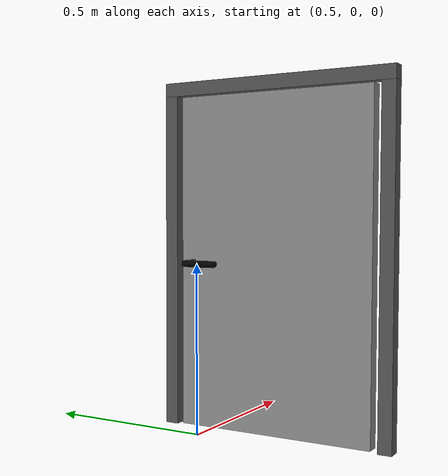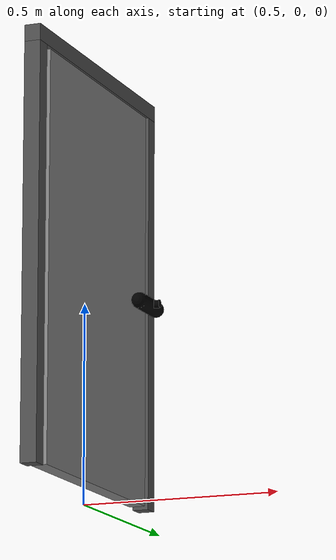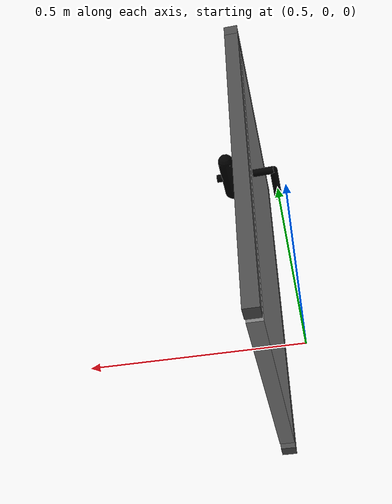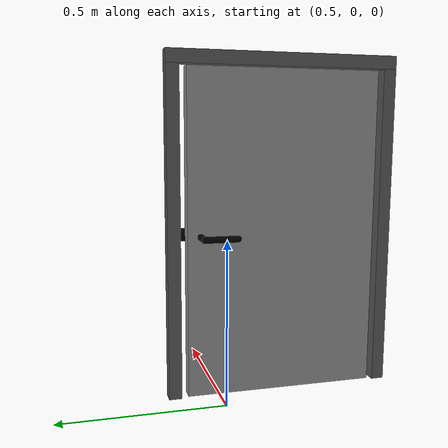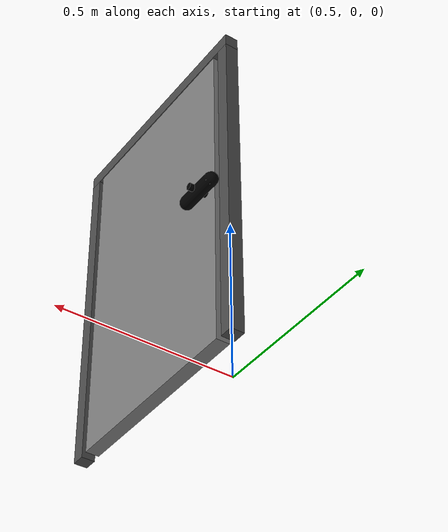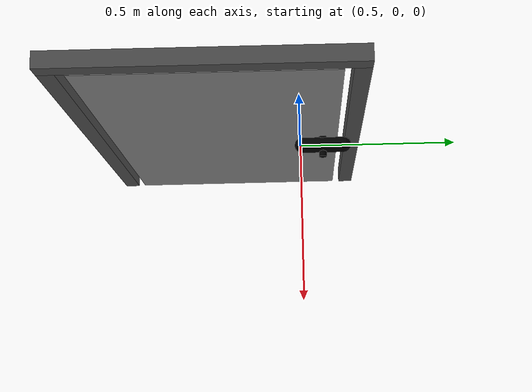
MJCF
<mujoco model='door'>
    <worldbody>

        <!-- Parameter definitions: -->
        <!-- distance_base_to_door = 0.6 [m] -->
        <!-- door_width: 0.6 [m] (half-width 0.3) -->
        <!-- door_thickness: 0.04 [m] (half-thickness 0.02) -->
        <!-- door_height: 1.0 [m] (half-height 0.5) -->
        <!-- door_latch_offset: z=0.0 [m] -->
        <!-- door_latch_radius: 0.01 [m] -->

        <body name="door_frame" pos="0.6 0.1 0.5" quat="0.7071068 0 0 -0.7071068" user="1001 0 2002 -0.4 -0.1 0.252 0 0.3 0.5">

            <!-- Two vertical posts resting on ground -->
            <!-- Left post (shifted half_door_thickness) -->
            <geom type="box" pos="-0.04 0 0" size="0.02 0.02 0.5" rgba="0.3 0.3 0.3 1"/>
            <!-- Right post (shifted door_width + half_door_thickness) -->
            <geom type="box" pos="0.64 0 0" size="0.02 0.02 0.5" rgba="0.3 0.3 0.3 1"/>
            <!-- Upper horizontal beam -->
            <geom type="box" pos="0.3 0 0.52" size="0.36 0.02 0.02" rgba="0.3 0.3 0.3 1"/>
            <site name="S_handle_target" pos="0.75 -0.5 -.18" size="0.02" group='3'/>

            <!-- Door panel -->
            <!-- Located at half_door_width  -->
            <body name="door_panel" pos="0.3 0 0">
                <!-- Uniform density wooden door; CoM at geometric center (0,0,0) and
                     inertia of a 0.6 x 0.04 x 1.0 m box (x,y,z). -->
                <inertial pos="0 0 0"
                          quat="1 0 0 0"
                          mass="10.0"
                          diaginertia="0.4173 0.5667 0.1507" />

                <!-- Box size: half_door_width x half_door_thickness x half_door_height -->
                <!-- Door should be slightly shifted up to avoid collision with ground -->
                <geom type="box" size="0.3 0.02 0.495" friction="0.5 0.1 0.001" />

                <!-- Door hinge joint  -->
                <!-- Located at the side of the door panel -->
                <joint name="door_hinge" pos="0.3 0 0" axis="0 0 1"
                       damping="5.0"
                       frictionloss="5.0"
                       stiffness="30.0"
                       springref="0.0" />

                <!-- Door handle and latch  -->
                <!-- Shifted from center: half_door_width - 2 * door_thickness -->
                <body name="door_latch" pos="-0.26 0 0.0">
                    <inertial pos="-0.027762 0.0238544 0" quat="0.365653 0.605347 -0.36522 0.605365" mass="0.353743" diaginertia="0.0483771 0.0410001 0.0211013" />

                    <!-- Door latch joint -->
                    <!-- Add a small torsion spring so the latch prefers the closed position (0 [rad]). -->
                    <joint name="door_latch" pos="0 0 0" axis="0 1 0"
                           range="0 1.6"
                           damping="0.05"
                           frictionloss="0.02"
                           stiffness="2.0"
                           springref="0.0" />

                    <!-- Door latch shapes -->
                    <geom type="cylinder" size="0.01 0.075" quat="0.7071068 0.7071068 0 0" rgba="0 0 0 1" />
                    <!-- Front handle -->
                    <geom type="capsule" size="0.01 0.05" pos="0.05 -0.075 0" quat="0.7071068 0 0.7071068 0" rgba="0 0 0 1" />
                    <!-- Back latch -->
                    <geom type="capsule" size="0.02 0.055" pos="0.0 0.0425 0" quat="0.7071068 0 0.7071068 0" rgba="0 0 0 1" />
                    <site name="S_handle" pos="0.15 -0.15 0" size="0.02" group='3'/>

                </body>

            </body>

        </body>

    </worldbody>
</mujoco>
